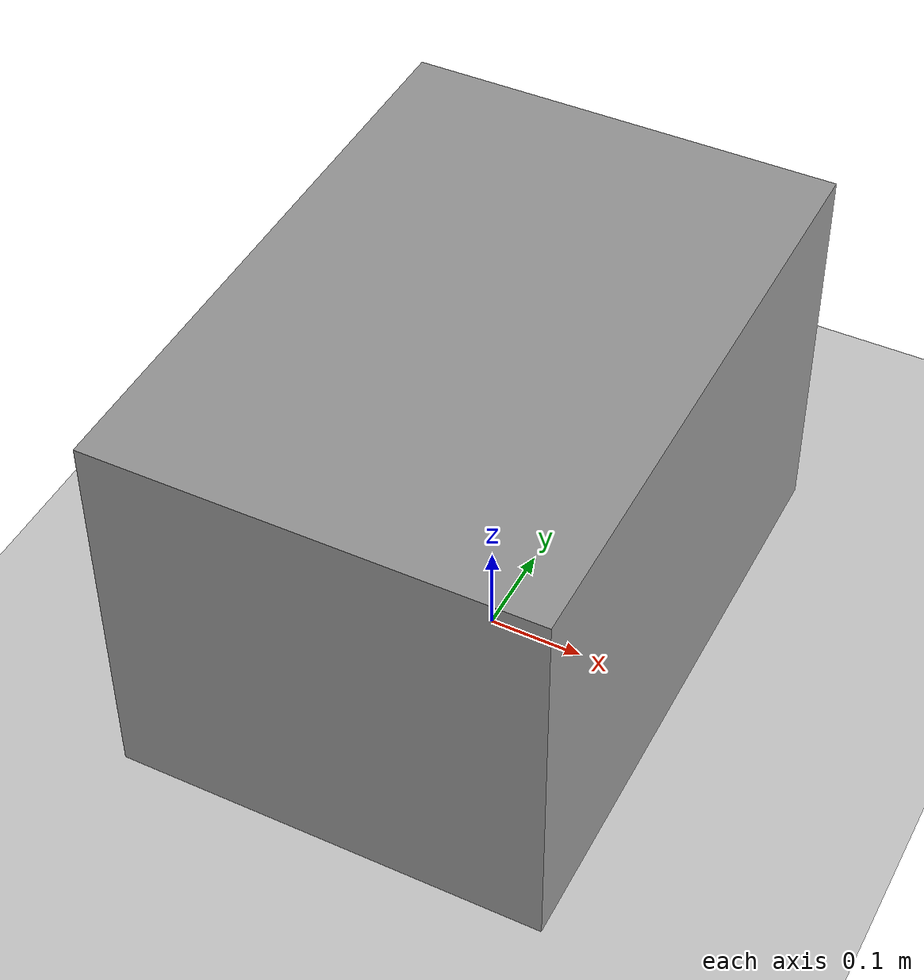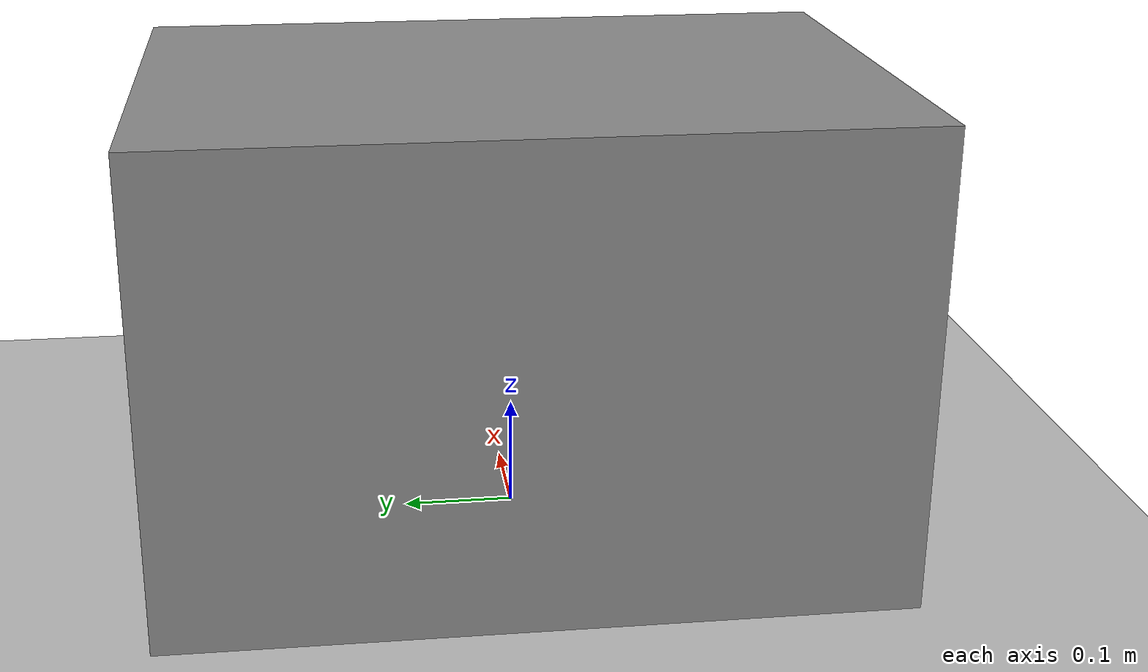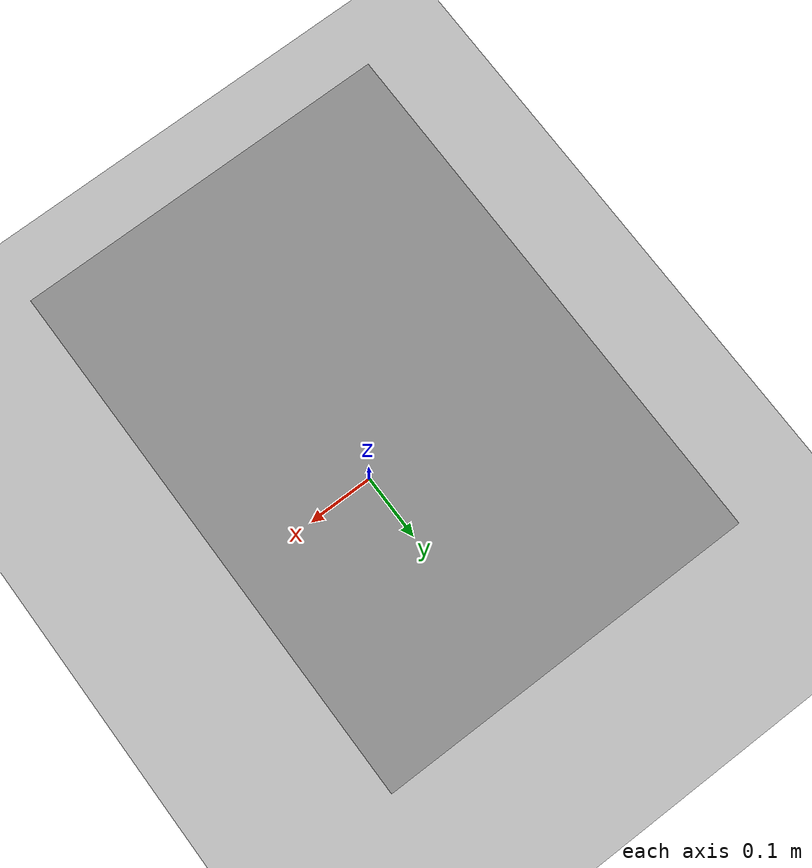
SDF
<sdf version="1.7">
 <world name="default">
  <light name="sun" type="directional">
   <diffuse>1 1 1 1</diffuse>
   <specular>0.8 0.8 0.8 1</specular>
   <direction>-0.5 -0.5 -1</direction>
   <pose>0 0 2 0 -0 0</pose>
   <attenuation>
    <range>1000</range>
    <constant>1</constant>
    <linear>1</linear>
    <quadratic>0.001</quadratic>
   </attenuation>
   <spot><inner_angle>0</inner_angle><outer_angle>0</outer_angle><falloff>0</falloff></spot>
  </light>
  <model name="ground_plane">
   <static>1</static>
   <link name="link">
    <collision name="collision">
     <geometry><plane><size>100 100</size><normal>0 0 1</normal></plane></geometry>
    </collision>
    <visual name="visual">
     <geometry><plane><size>100 100</size><normal>0 0 1</normal></plane></geometry>
     <material>
      <script><uri>file://media/materials/scripts/gazebo.material</uri><name>Gazebo/Grey</name></script>
     </material>
    </visual>
    <kinematic>1</kinematic>
   </link>
  </model>
  <gravity>0 0 -9.8</gravity>
  <magnetic_field>6e-06 2.3e-05 -4.2e-05</magnetic_field>
  <atmosphere type="adiabatic"/>
  <physics name="default_physics" default="0" type="ode">
   <max_step_size>0.001</max_step_size>
   <real_time_factor>1</real_time_factor>
   <real_time_update_rate>1000</real_time_update_rate>
   <ode><constraints><contact_surface_layer>0.0</contact_surface_layer></constraints></ode>
  </physics>
  <scene><ambient>0.4 0.4 0.4 1</ambient><background>0.7 0.7 0.7 1</background><shadows>1</shadows></scene>
  <audio><device>default</device></audio>
  <spherical_coordinates>
   <surface_model>EARTH_WGS84</surface_model>
   <latitude_deg>0</latitude_deg>
   <longitude_deg>0</longitude_deg>
   <elevation>0</elevation>
   <heading_deg>0</heading_deg>
  </spherical_coordinates>
  <model name="table">
   <static>1</static>
   <pose>-0.016428 0.000584 0.209863 -4.5e-05 -1.6e-05 1.8e-05</pose>
   <link name="link">
    <inertial>
     <mass>1</mass>
     <inertia>
      <ixx>0.166667</ixx>
      <ixy>0</ixy>
      <ixz>0</ixz>
      <iyy>0.166667</iyy>
      <iyz>0</iyz>
      <izz>0.166667</izz>
     </inertia>
    </inertial>
    <collision name="collision">
     <geometry><box><size>0.453157 0.642049 0.419823</size></box></geometry>
    </collision>
    <visual name="visual">
     <geometry><box><size>0.453157 0.642049 0.419823</size></box></geometry>
     <material>
      <script><name>Gazebo/Grey</name><uri>file://media/materials/scripts/gazebo.material</uri></script>
     </material>
    </visual>
   </link>
  </model>
 </world>
</sdf>
